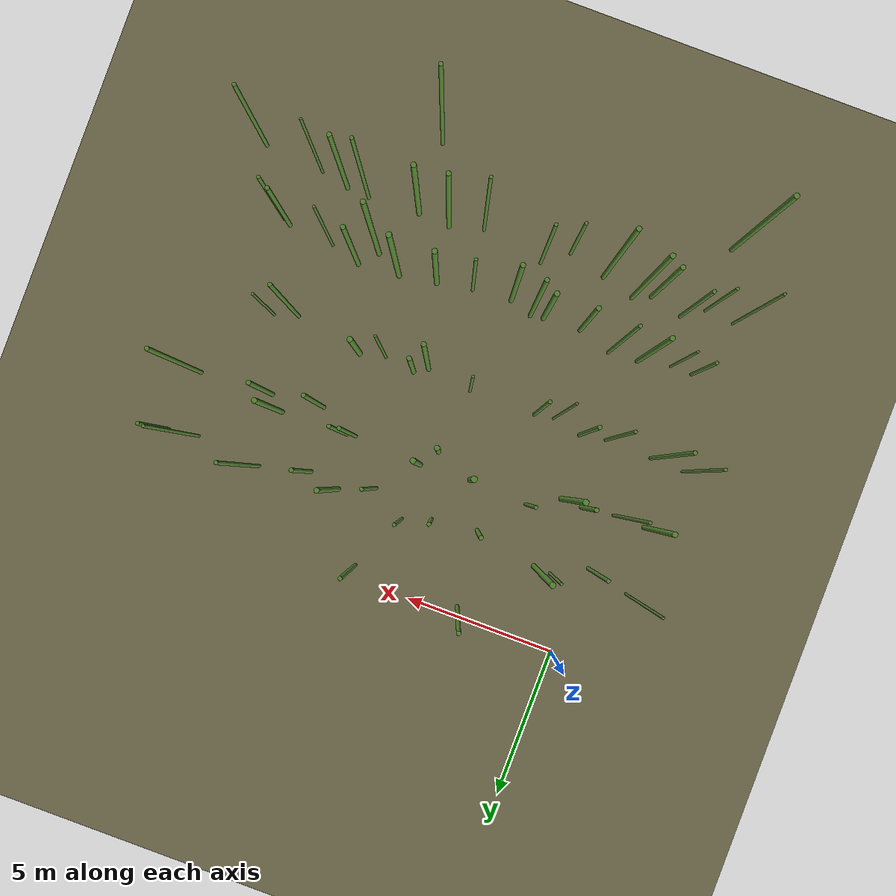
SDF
<sdf version="1.9">
 <world name="bamboo_field">
  <model name="ground_plane">
   <static>true</static>
   <link name="link">
    <collision name="collision">
     <geometry><plane><normal>0 0 1</normal><size>80.0 80.0</size></plane></geometry>
    </collision>
    <visual name="visual">
     <geometry><plane><normal>0 0 1</normal><size>80.0 80.0</size></plane></geometry>
     <material><diffuse>0.45 0.42 0.30 1</diffuse></material>
    </visual>
   </link>
  </model>
  <model name="bamboo_638">
   <static>true</static>
   <pose>-0.9946874145618714 -14.499350001815412 3.9134186991705504 0 0 0</pose>
   <link name="link">
    <collision name="collision">
     <geometry>
      <cylinder><radius>0.08014711212861786</radius><length>7.826837398341101</length></cylinder>
     </geometry>
    </collision>
    <visual name="visual">
     <geometry>
      <cylinder><radius>0.08014711212861786</radius><length>7.826837398341101</length></cylinder>
     </geometry>
     <material><diffuse>0.35 0.55 0.20 1</diffuse><specular>0.1 0.1 0.1 1</specular></material>
    </visual>
   </link>
  </model>
  <model name="bamboo_647">
   <static>true</static>
   <pose>9.150279488582385 -14.460414961602686 3.9707226586488966 0 0 0</pose>
   <link name="link">
    <collision name="collision">
     <geometry>
      <cylinder><radius>0.0646170188852106</radius><length>7.941445317297793</length></cylinder>
     </geometry>
    </collision>
    <visual name="visual">
     <geometry>
      <cylinder><radius>0.0646170188852106</radius><length>7.941445317297793</length></cylinder>
     </geometry>
     <material><diffuse>0.35 0.55 0.20 1</diffuse><specular>0.1 0.1 0.1 1</specular></material>
    </visual>
   </link>
  </model>
  <model name="bamboo_704">
   <static>true</static>
   <pose>-1.8685894989383836 -12.221886072193785 3.277248599776084 0 0 0</pose>
   <link name="link">
    <collision name="collision">
     <geometry>
      <cylinder><radius>0.04527570909495779</radius><length>6.554497199552168</length></cylinder>
     </geometry>
    </collision>
    <visual name="visual">
     <geometry>
      <cylinder><radius>0.04527570909495779</radius><length>6.554497199552168</length></cylinder>
     </geometry>
     <material><diffuse>0.35 0.55 0.20 1</diffuse><specular>0.1 0.1 0.1 1</specular></material>
    </visual>
   </link>
  </model>
  <model name="bamboo_705">
   <static>true</static>
   <pose>-0.8719768916085221 -12.306731477500549 2.360793077200136 0 0 0</pose>
   <link name="link">
    <collision name="collision">
     <geometry>
      <cylinder><radius>0.04834046594517737</radius><length>4.721586154400272</length></cylinder>
     </geometry>
    </collision>
    <visual name="visual">
     <geometry>
      <cylinder><radius>0.04834046594517737</radius><length>4.721586154400272</length></cylinder>
     </geometry>
     <material><diffuse>0.35 0.55 0.20 1</diffuse><specular>0.1 0.1 0.1 1</specular></material>
    </visual>
   </link>
  </model>
  <model name="bamboo_706">
   <static>true</static>
   <pose>-0.16918783347953809 -11.848966393460959 2.704648150540664 0 0 0</pose>
   <link name="link">
    <collision name="collision">
     <geometry>
      <cylinder><radius>0.06215060849991439</radius><length>5.409296301081328</length></cylinder>
     </geometry>
    </collision>
    <visual name="visual">
     <geometry>
      <cylinder><radius>0.06215060849991439</radius><length>5.409296301081328</length></cylinder>
     </geometry>
     <material><diffuse>0.35 0.55 0.20 1</diffuse><specular>0.1 0.1 0.1 1</specular></material>
    </visual>
   </link>
  </model>
  <model name="bamboo_707">
   <static>true</static>
   <pose>0.9481726911994396 -12.11710112771372 2.861176145466491 0 0 0</pose>
   <link name="link">
    <collision name="collision">
     <geometry>
      <cylinder><radius>0.07820921839521855</radius><length>5.722352290932982</length></cylinder>
     </geometry>
    </collision>
    <visual name="visual">
     <geometry>
      <cylinder><radius>0.07820921839521855</radius><length>5.722352290932982</length></cylinder>
     </geometry>
     <material><diffuse>0.35 0.55 0.20 1</diffuse><specular>0.1 0.1 0.1 1</specular></material>
    </visual>
   </link>
  </model>
  <model name="bamboo_708">
   <static>true</static>
   <pose>1.5431855828186514 -11.869834243951713 3.852293845185315 0 0 0</pose>
   <link name="link">
    <collision name="collision">
     <geometry>
      <cylinder><radius>0.07828541098171424</radius><length>7.70458769037063</length></cylinder>
     </geometry>
    </collision>
    <visual name="visual">
     <geometry>
      <cylinder><radius>0.07828541098171424</radius><length>7.70458769037063</length></cylinder>
     </geometry>
     <material><diffuse>0.35 0.55 0.20 1</diffuse><specular>0.1 0.1 0.1 1</specular></material>
    </visual>
   </link>
  </model>
  <model name="bamboo_709">
   <static>true</static>
   <pose>2.6613570880264845 -12.180663935705416 3.965912942357096 0 0 0</pose>
   <link name="link">
    <collision name="collision">
     <geometry>
      <cylinder><radius>0.07631566391686458</radius><length>7.931825884714192</length></cylinder>
     </geometry>
    </collision>
    <visual name="visual">
     <geometry>
      <cylinder><radius>0.07631566391686458</radius><length>7.931825884714192</length></cylinder>
     </geometry>
     <material><diffuse>0.35 0.55 0.20 1</diffuse><specular>0.1 0.1 0.1 1</specular></material>
    </visual>
   </link>
  </model>
  <model name="bamboo_710">
   <static>true</static>
   <pose>3.9406922110673945 -12.527799526873327 2.44377340696488 0 0 0</pose>
   <link name="link">
    <collision name="collision">
     <geometry>
      <cylinder><radius>0.05501669808640868</radius><length>4.88754681392976</length></cylinder>
     </geometry>
    </collision>
    <visual name="visual">
     <geometry>
      <cylinder><radius>0.05501669808640868</radius><length>4.88754681392976</length></cylinder>
     </geometry>
     <material><diffuse>0.35 0.55 0.20 1</diffuse><specular>0.1 0.1 0.1 1</specular></material>
    </visual>
   </link>
  </model>
  <model name="bamboo_711">
   <static>true</static>
   <pose>4.759890042045234 -11.894844771745435 3.1073263065706413 0 0 0</pose>
   <link name="link">
    <collision name="collision">
     <geometry>
      <cylinder><radius>0.05379785683718028</radius><length>6.214652613141283</length></cylinder>
     </geometry>
    </collision>
    <visual name="visual">
     <geometry>
      <cylinder><radius>0.05379785683718028</radius><length>6.214652613141283</length></cylinder>
     </geometry>
     <material><diffuse>0.35 0.55 0.20 1</diffuse><specular>0.1 0.1 0.1 1</specular></material>
    </visual>
   </link>
  </model>
  <model name="bamboo_712">
   <static>true</static>
   <pose>6.885778840102381 -12.263131712959213 3.622148473565317 0 0 0</pose>
   <link name="link">
    <collision name="collision">
     <geometry>
      <cylinder><radius>0.051649707427711716</radius><length>7.244296947130634</length></cylinder>
     </geometry>
    </collision>
    <visual name="visual">
     <geometry>
      <cylinder><radius>0.051649707427711716</radius><length>7.244296947130634</length></cylinder>
     </geometry>
     <material><diffuse>0.35 0.55 0.20 1</diffuse><specular>0.1 0.1 0.1 1</specular></material>
    </visual>
   </link>
  </model>
  <model name="bamboo_713">
   <static>true</static>
   <pose>8.009629720139834 -11.964996815824227 3.5858083886285597 0 0 0</pose>
   <link name="link">
    <collision name="collision">
     <geometry>
      <cylinder><radius>0.07617902633722576</radius><length>7.171616777257119</length></cylinder>
     </geometry>
    </collision>
    <visual name="visual">
     <geometry>
      <cylinder><radius>0.07617902633722576</radius><length>7.171616777257119</length></cylinder>
     </geometry>
     <material><diffuse>0.35 0.55 0.20 1</diffuse><specular>0.1 0.1 0.1 1</specular></material>
    </visual>
   </link>
  </model>
  <model name="bamboo_714">
   <static>true</static>
   <pose>9.07471129465066 -12.031437933524254 3.19046240511916 0 0 0</pose>
   <link name="link">
    <collision name="collision">
     <geometry>
      <cylinder><radius>0.08538278210735471</radius><length>6.38092481023832</length></cylinder>
     </geometry>
    </collision>
    <visual name="visual">
     <geometry>
      <cylinder><radius>0.08538278210735471</radius><length>6.38092481023832</length></cylinder>
     </geometry>
     <material><diffuse>0.35 0.55 0.20 1</diffuse><specular>0.1 0.1 0.1 1</specular></material>
    </visual>
   </link>
  </model>
  <model name="bamboo_715">
   <static>true</static>
   <pose>10.808883777784775 -11.935508719027792 3.6342834000930844 0 0 0</pose>
   <link name="link">
    <collision name="collision">
     <geometry>
      <cylinder><radius>0.05739651034764666</radius><length>7.268566800186169</length></cylinder>
     </geometry>
    </collision>
    <visual name="visual">
     <geometry>
      <cylinder><radius>0.05739651034764666</radius><length>7.268566800186169</length></cylinder>
     </geometry>
     <material><diffuse>0.35 0.55 0.20 1</diffuse><specular>0.1 0.1 0.1 1</specular></material>
    </visual>
   </link>
  </model>
  <model name="bamboo_716">
   <static>true</static>
   <pose>11.573237251274541 -11.998797454192815 3.204603268633085 0 0 0</pose>
   <link name="link">
    <collision name="collision">
     <geometry>
      <cylinder><radius>0.07263895915801755</radius><length>6.40920653726617</length></cylinder>
     </geometry>
    </collision>
    <visual name="visual">
     <geometry>
      <cylinder><radius>0.07263895915801755</radius><length>6.40920653726617</length></cylinder>
     </geometry>
     <material><diffuse>0.35 0.55 0.20 1</diffuse><specular>0.1 0.1 0.1 1</specular></material>
    </visual>
   </link>
  </model>
  <model name="bamboo_717">
   <static>true</static>
   <pose>12.522933982891937 -12.191309359580584 3.0798594588773383 0 0 0</pose>
   <link name="link">
    <collision name="collision">
     <geometry>
      <cylinder><radius>0.04205911260817816</radius><length>6.1597189177546765</length></cylinder>
     </geometry>
    </collision>
    <visual name="visual">
     <geometry>
      <cylinder><radius>0.04205911260817816</radius><length>6.1597189177546765</length></cylinder>
     </geometry>
     <material><diffuse>0.35 0.55 0.20 1</diffuse><specular>0.1 0.1 0.1 1</specular></material>
    </visual>
   </link>
  </model>
  <model name="bamboo_718">
   <static>true</static>
   <pose>14.55248881110734 -12.387530547187657 3.190264382589681 0 0 0</pose>
   <link name="link">
    <collision name="collision">
     <geometry>
      <cylinder><radius>0.06228081179888553</radius><length>6.380528765179362</length></cylinder>
     </geometry>
    </collision>
    <visual name="visual">
     <geometry>
      <cylinder><radius>0.06228081179888553</radius><length>6.380528765179362</length></cylinder>
     </geometry>
     <material><diffuse>0.35 0.55 0.20 1</diffuse><specular>0.1 0.1 0.1 1</specular></material>
    </visual>
   </link>
  </model>
  <model name="bamboo_777">
   <static>true</static>
   <pose>-1.1798505966455008 -10.17783732275529 2.012262524870586 0 0 0</pose>
   <link name="link">
    <collision name="collision">
     <geometry>
      <cylinder><radius>0.05619619196915351</radius><length>4.024525049741172</length></cylinder>
     </geometry>
    </collision>
    <visual name="visual">
     <geometry>
      <cylinder><radius>0.05619619196915351</radius><length>4.024525049741172</length></cylinder>
     </geometry>
     <material><diffuse>0.35 0.55 0.20 1</diffuse><specular>0.1 0.1 0.1 1</specular></material>
    </visual>
   </link>
  </model>
  <model name="bamboo_778">
   <static>true</static>
   <pose>-0.43881660910885945 -10.18023463372481 2.351258176475995 0 0 0</pose>
   <link name="link">
    <collision name="collision">
     <geometry>
      <cylinder><radius>0.041455869090573035</radius><length>4.70251635295199</length></cylinder>
     </geometry>
    </collision>
    <visual name="visual">
     <geometry>
      <cylinder><radius>0.041455869090573035</radius><length>4.70251635295199</length></cylinder>
     </geometry>
     <material><diffuse>0.35 0.55 0.20 1</diffuse><specular>0.1 0.1 0.1 1</specular></material>
    </visual>
   </link>
  </model>
  <model name="bamboo_779">
   <static>true</static>
   <pose>0.6358590575566945 -9.977750091020908 3.2913044413291495 0 0 0</pose>
   <link name="link">
    <collision name="collision">
     <geometry>
      <cylinder><radius>0.07986271919144625</radius><length>6.582608882658299</length></cylinder>
     </geometry>
    </collision>
    <visual name="visual">
     <geometry>
      <cylinder><radius>0.07986271919144625</radius><length>6.582608882658299</length></cylinder>
     </geometry>
     <material><diffuse>0.35 0.55 0.20 1</diffuse><specular>0.1 0.1 0.1 1</specular></material>
    </visual>
   </link>
  </model>
  <model name="bamboo_780">
   <static>true</static>
   <pose>1.6454026678223395 -9.896981180100415 3.5679780664170773 0 0 0</pose>
   <link name="link">
    <collision name="collision">
     <geometry>
      <cylinder><radius>0.05675548272671926</radius><length>7.1359561328341545</length></cylinder>
     </geometry>
    </collision>
    <visual name="visual">
     <geometry>
      <cylinder><radius>0.05675548272671926</radius><length>7.1359561328341545</length></cylinder>
     </geometry>
     <material><diffuse>0.35 0.55 0.20 1</diffuse><specular>0.1 0.1 0.1 1</specular></material>
    </visual>
   </link>
  </model>
  <model name="bamboo_781">
   <static>true</static>
   <pose>2.764797649475428 -10.271006703278971 2.6310056828733863 0 0 0</pose>
   <link name="link">
    <collision name="collision">
     <geometry>
      <cylinder><radius>0.07624820771746249</radius><length>5.262011365746773</length></cylinder>
     </geometry>
    </collision>
    <visual name="visual">
     <geometry>
      <cylinder><radius>0.07624820771746249</radius><length>5.262011365746773</length></cylinder>
     </geometry>
     <material><diffuse>0.35 0.55 0.20 1</diffuse><specular>0.1 0.1 0.1 1</specular></material>
    </visual>
   </link>
  </model>
  <model name="bamboo_782">
   <static>true</static>
   <pose>4.042604441318144 -10.220468412358573 2.707191080841616 0 0 0</pose>
   <link name="link">
    <collision name="collision">
     <geometry>
      <cylinder><radius>0.08440147347591176</radius><length>5.414382161683232</length></cylinder>
     </geometry>
    </collision>
    <visual name="visual">
     <geometry>
      <cylinder><radius>0.08440147347591176</radius><length>5.414382161683232</length></cylinder>
     </geometry>
     <material><diffuse>0.35 0.55 0.20 1</diffuse><specular>0.1 0.1 0.1 1</specular></material>
    </visual>
   </link>
  </model>
  <model name="bamboo_783">
   <static>true</static>
   <pose>4.476031551298204 -10.144094040691009 3.6848115498717053 0 0 0</pose>
   <link name="link">
    <collision name="collision">
     <geometry>
      <cylinder><radius>0.07132554238076252</radius><length>7.369623099743411</length></cylinder>
     </geometry>
    </collision>
    <visual name="visual">
     <geometry>
      <cylinder><radius>0.07132554238076252</radius><length>7.369623099743411</length></cylinder>
     </geometry>
     <material><diffuse>0.35 0.55 0.20 1</diffuse><specular>0.1 0.1 0.1 1</specular></material>
    </visual>
   </link>
  </model>
  <model name="bamboo_784">
   <static>true</static>
   <pose>5.234570728176862 -10.394650681324332 3.410532368091039 0 0 0</pose>
   <link name="link">
    <collision name="collision">
     <geometry>
      <cylinder><radius>0.07757701043348067</radius><length>6.821064736182078</length></cylinder>
     </geometry>
    </collision>
    <visual name="visual">
     <geometry>
      <cylinder><radius>0.07757701043348067</radius><length>6.821064736182078</length></cylinder>
     </geometry>
     <material><diffuse>0.35 0.55 0.20 1</diffuse><specular>0.1 0.1 0.1 1</specular></material>
    </visual>
   </link>
  </model>
  <model name="bamboo_785">
   <static>true</static>
   <pose>6.545477701283061 -10.26549251693101 2.903812659225724 0 0 0</pose>
   <link name="link">
    <collision name="collision">
     <geometry>
      <cylinder><radius>0.051882112313651876</radius><length>5.807625318451448</length></cylinder>
     </geometry>
    </collision>
    <visual name="visual">
     <geometry>
      <cylinder><radius>0.051882112313651876</radius><length>5.807625318451448</length></cylinder>
     </geometry>
     <material><diffuse>0.35 0.55 0.20 1</diffuse><specular>0.1 0.1 0.1 1</specular></material>
    </visual>
   </link>
  </model>
  <model name="bamboo_786">
   <static>true</static>
   <pose>7.732328231433898 -10.078926198613518 2.88754818597428 0 0 0</pose>
   <link name="link">
    <collision name="collision">
     <geometry>
      <cylinder><radius>0.08566769230835293</radius><length>5.77509637194856</length></cylinder>
     </geometry>
    </collision>
    <visual name="visual">
     <geometry>
      <cylinder><radius>0.08566769230835293</radius><length>5.77509637194856</length></cylinder>
     </geometry>
     <material><diffuse>0.35 0.55 0.20 1</diffuse><specular>0.1 0.1 0.1 1</specular></material>
    </visual>
   </link>
  </model>
  <model name="bamboo_787">
   <static>true</static>
   <pose>8.981435185617809 -9.873917185976472 3.464882133511887 0 0 0</pose>
   <link name="link">
    <collision name="collision">
     <geometry>
      <cylinder><radius>0.08618183839450476</radius><length>6.929764267023774</length></cylinder>
     </geometry>
    </collision>
    <visual name="visual">
     <geometry>
      <cylinder><radius>0.08618183839450476</radius><length>6.929764267023774</length></cylinder>
     </geometry>
     <material><diffuse>0.35 0.55 0.20 1</diffuse><specular>0.1 0.1 0.1 1</specular></material>
    </visual>
   </link>
  </model>
  <model name="bamboo_788">
   <static>true</static>
   <pose>9.845915733861373 -10.323888422902085 3.876047693433562 0 0 0</pose>
   <link name="link">
    <collision name="collision">
     <geometry>
      <cylinder><radius>0.08110692589814716</radius><length>7.752095386867124</length></cylinder>
     </geometry>
    </collision>
    <visual name="visual">
     <geometry>
      <cylinder><radius>0.08110692589814716</radius><length>7.752095386867124</length></cylinder>
     </geometry>
     <material><diffuse>0.35 0.55 0.20 1</diffuse><specular>0.1 0.1 0.1 1</specular></material>
    </visual>
   </link>
  </model>
  <model name="bamboo_789">
   <static>true</static>
   <pose>10.364918793110029 -9.764154291601711 3.0446897464370126 0 0 0</pose>
   <link name="link">
    <collision name="collision">
     <geometry>
      <cylinder><radius>0.07568386952013156</radius><length>6.089379492874025</length></cylinder>
     </geometry>
    </collision>
    <visual name="visual">
     <geometry>
      <cylinder><radius>0.07568386952013156</radius><length>6.089379492874025</length></cylinder>
     </geometry>
     <material><diffuse>0.35 0.55 0.20 1</diffuse><specular>0.1 0.1 0.1 1</specular></material>
    </visual>
   </link>
  </model>
  <model name="bamboo_790">
   <static>true</static>
   <pose>11.369160655956453 -10.052386033942744 2.933751804965524 0 0 0</pose>
   <link name="link">
    <collision name="collision">
     <geometry>
      <cylinder><radius>0.04435379457968836</radius><length>5.867503609931048</length></cylinder>
     </geometry>
    </collision>
    <visual name="visual">
     <geometry>
      <cylinder><radius>0.04435379457968836</radius><length>5.867503609931048</length></cylinder>
     </geometry>
     <material><diffuse>0.35 0.55 0.20 1</diffuse><specular>0.1 0.1 0.1 1</specular></material>
    </visual>
   </link>
  </model>
  <model name="bamboo_791">
   <static>true</static>
   <pose>12.924951440709878 -10.192174173523956 2.624285796863598 0 0 0</pose>
   <link name="link">
    <collision name="collision">
     <geometry>
      <cylinder><radius>0.06887799172047294</radius><length>5.248571593727196</length></cylinder>
     </geometry>
    </collision>
    <visual name="visual">
     <geometry>
      <cylinder><radius>0.06887799172047294</radius><length>5.248571593727196</length></cylinder>
     </geometry>
     <material><diffuse>0.35 0.55 0.20 1</diffuse><specular>0.1 0.1 0.1 1</specular></material>
    </visual>
   </link>
  </model>
  <model name="bamboo_792">
   <static>true</static>
   <pose>13.159830374576147 -10.312265926456487 2.882231245504678 0 0 0</pose>
   <link name="link">
    <collision name="collision">
     <geometry>
      <cylinder><radius>0.05595748952507492</radius><length>5.764462491009356</length></cylinder>
     </geometry>
    </collision>
    <visual name="visual">
     <geometry>
      <cylinder><radius>0.05595748952507492</radius><length>5.764462491009356</length></cylinder>
     </geometry>
     <material><diffuse>0.35 0.55 0.20 1</diffuse><specular>0.1 0.1 0.1 1</specular></material>
    </visual>
   </link>
  </model>
  <model name="bamboo_848">
   <static>true</static>
   <pose>-2.0183040743552336 -7.073972254267283 3.2866763339377894 0 0 0</pose>
   <link name="link">
    <collision name="collision">
     <geometry>
      <cylinder><radius>0.0509193249098831</radius><length>6.573352667875579</length></cylinder>
     </geometry>
    </collision>
    <visual name="visual">
     <geometry>
      <cylinder><radius>0.0509193249098831</radius><length>6.573352667875579</length></cylinder>
     </geometry>
     <material><diffuse>0.35 0.55 0.20 1</diffuse><specular>0.1 0.1 0.1 1</specular></material>
    </visual>
   </link>
  </model>
  <model name="bamboo_849">
   <static>true</static>
   <pose>-0.883079867215764 -7.126517788197719 3.7930247857824173 0 0 0</pose>
   <link name="link">
    <collision name="collision">
     <geometry>
      <cylinder><radius>0.062294102616147984</radius><length>7.586049571564835</length></cylinder>
     </geometry>
    </collision>
    <visual name="visual">
     <geometry>
      <cylinder><radius>0.062294102616147984</radius><length>7.586049571564835</length></cylinder>
     </geometry>
     <material><diffuse>0.35 0.55 0.20 1</diffuse><specular>0.1 0.1 0.1 1</specular></material>
    </visual>
   </link>
  </model>
  <model name="bamboo_850">
   <static>true</static>
   <pose>0.7191119098053741 -7.172504300486279 3.4001103986774512 0 0 0</pose>
   <link name="link">
    <collision name="collision">
     <geometry>
      <cylinder><radius>0.05332182405576388</radius><length>6.8002207973549025</length></cylinder>
     </geometry>
    </collision>
    <visual name="visual">
     <geometry>
      <cylinder><radius>0.05332182405576388</radius><length>6.8002207973549025</length></cylinder>
     </geometry>
     <material><diffuse>0.35 0.55 0.20 1</diffuse><specular>0.1 0.1 0.1 1</specular></material>
    </visual>
   </link>
  </model>
  <model name="bamboo_851">
   <static>true</static>
   <pose>1.5828672381517772 -7.028096550818514 2.872115334926735 0 0 0</pose>
   <link name="link">
    <collision name="collision">
     <geometry>
      <cylinder><radius>0.06453397269477673</radius><length>5.74423066985347</length></cylinder>
     </geometry>
    </collision>
    <visual name="visual">
     <geometry>
      <cylinder><radius>0.06453397269477673</radius><length>5.74423066985347</length></cylinder>
     </geometry>
     <material><diffuse>0.35 0.55 0.20 1</diffuse><specular>0.1 0.1 0.1 1</specular></material>
    </visual>
   </link>
  </model>
  <model name="bamboo_852">
   <static>true</static>
   <pose>2.5787691741798078 -7.2373060375396 3.908310691852291 0 0 0</pose>
   <link name="link">
    <collision name="collision">
     <geometry>
      <cylinder><radius>0.04016536801473195</radius><length>7.816621383704582</length></cylinder>
     </geometry>
    </collision>
    <visual name="visual">
     <geometry>
      <cylinder><radius>0.04016536801473195</radius><length>7.816621383704582</length></cylinder>
     </geometry>
     <material><diffuse>0.35 0.55 0.20 1</diffuse><specular>0.1 0.1 0.1 1</specular></material>
    </visual>
   </link>
  </model>
  <model name="bamboo_853">
   <static>true</static>
   <pose>3.213513425750487 -7.1321617080731645 3.3636714712206732 0 0 0</pose>
   <link name="link">
    <collision name="collision">
     <geometry>
      <cylinder><radius>0.057945916329860576</radius><length>6.7273429424413465</length></cylinder>
     </geometry>
    </collision>
    <visual name="visual">
     <geometry>
      <cylinder><radius>0.057945916329860576</radius><length>6.7273429424413465</length></cylinder>
     </geometry>
     <material><diffuse>0.35 0.55 0.20 1</diffuse><specular>0.1 0.1 0.1 1</specular></material>
    </visual>
   </link>
  </model>
  <model name="bamboo_854">
   <static>true</static>
   <pose>5.467018802957449 -7.121297676428453 2.919278707511024 0 0 0</pose>
   <link name="link">
    <collision name="collision">
     <geometry>
      <cylinder><radius>0.0440228392337194</radius><length>5.838557415022048</length></cylinder>
     </geometry>
    </collision>
    <visual name="visual">
     <geometry>
      <cylinder><radius>0.0440228392337194</radius><length>5.838557415022048</length></cylinder>
     </geometry>
     <material><diffuse>0.35 0.55 0.20 1</diffuse><specular>0.1 0.1 0.1 1</specular></material>
    </visual>
   </link>
  </model>
  <model name="bamboo_855">
   <static>true</static>
   <pose>6.9962078722680445 -7.323269691642657 3.7929213957006933 0 0 0</pose>
   <link name="link">
    <collision name="collision">
     <geometry>
      <cylinder><radius>0.07479411393035379</radius><length>7.585842791401387</length></cylinder>
     </geometry>
    </collision>
    <visual name="visual">
     <geometry>
      <cylinder><radius>0.07479411393035379</radius><length>7.585842791401387</length></cylinder>
     </geometry>
     <material><diffuse>0.35 0.55 0.20 1</diffuse><specular>0.1 0.1 0.1 1</specular></material>
    </visual>
   </link>
  </model>
  <model name="bamboo_856">
   <static>true</static>
   <pose>7.4238858291594845 -7.070935152371391 2.2798859035327776 0 0 0</pose>
   <link name="link">
    <collision name="collision">
     <geometry>
      <cylinder><radius>0.07676620915139634</radius><length>4.559771807065555</length></cylinder>
     </geometry>
    </collision>
    <visual name="visual">
     <geometry>
      <cylinder><radius>0.07676620915139634</radius><length>4.559771807065555</length></cylinder>
     </geometry>
     <material><diffuse>0.35 0.55 0.20 1</diffuse><specular>0.1 0.1 0.1 1</specular></material>
    </visual>
   </link>
  </model>
  <model name="bamboo_857">
   <static>true</static>
   <pose>8.441310713057218 -7.2009944439576765 3.0811040944368786 0 0 0</pose>
   <link name="link">
    <collision name="collision">
     <geometry>
      <cylinder><radius>0.04314963154224275</radius><length>6.162208188873757</length></cylinder>
     </geometry>
    </collision>
    <visual name="visual">
     <geometry>
      <cylinder><radius>0.04314963154224275</radius><length>6.162208188873757</length></cylinder>
     </geometry>
     <material><diffuse>0.35 0.55 0.20 1</diffuse><specular>0.1 0.1 0.1 1</specular></material>
    </visual>
   </link>
  </model>
  <model name="bamboo_858">
   <static>true</static>
   <pose>9.298837331383938 -7.023307504351303 2.0740853598607347 0 0 0</pose>
   <link name="link">
    <collision name="collision">
     <geometry>
      <cylinder><radius>0.08979168140009726</radius><length>4.1481707197214694</length></cylinder>
     </geometry>
    </collision>
    <visual name="visual">
     <geometry>
      <cylinder><radius>0.08979168140009726</radius><length>4.1481707197214694</length></cylinder>
     </geometry>
     <material><diffuse>0.35 0.55 0.20 1</diffuse><specular>0.1 0.1 0.1 1</specular></material>
    </visual>
   </link>
  </model>
  <model name="bamboo_859">
   <static>true</static>
   <pose>11.611545285007868 -7.470484935979205 3.3561556468933826 0 0 0</pose>
   <link name="link">
    <collision name="collision">
     <geometry>
      <cylinder><radius>0.06291851823780305</radius><length>6.712311293786765</length></cylinder>
     </geometry>
    </collision>
    <visual name="visual">
     <geometry>
      <cylinder><radius>0.06291851823780305</radius><length>6.712311293786765</length></cylinder>
     </geometry>
     <material><diffuse>0.35 0.55 0.20 1</diffuse><specular>0.1 0.1 0.1 1</specular></material>
    </visual>
   </link>
  </model>
  <model name="bamboo_860">
   <static>true</static>
   <pose>12.388986863596841 -7.244898731627056 2.283180944456081 0 0 0</pose>
   <link name="link">
    <collision name="collision">
     <geometry>
      <cylinder><radius>0.04184388337115188</radius><length>4.566361888912162</length></cylinder>
     </geometry>
    </collision>
    <visual name="visual">
     <geometry>
      <cylinder><radius>0.04184388337115188</radius><length>4.566361888912162</length></cylinder>
     </geometry>
     <material><diffuse>0.35 0.55 0.20 1</diffuse><specular>0.1 0.1 0.1 1</specular></material>
    </visual>
   </link>
  </model>
  <model name="bamboo_912">
   <static>true</static>
   <pose>-1.4714579999415425 -4.91417997996601 2.8919453823178047 0 0 0</pose>
   <link name="link">
    <collision name="collision">
     <geometry>
      <cylinder><radius>0.08204384581013202</radius><length>5.7838907646356095</length></cylinder>
     </geometry>
    </collision>
    <visual name="visual">
     <geometry>
      <cylinder><radius>0.08204384581013202</radius><length>5.7838907646356095</length></cylinder>
     </geometry>
     <material><diffuse>0.35 0.55 0.20 1</diffuse><specular>0.1 0.1 0.1 1</specular></material>
    </visual>
   </link>
  </model>
  <model name="bamboo_913">
   <static>true</static>
   <pose>-0.38512071231732986 -4.936919472823416 3.871330153451787 0 0 0</pose>
   <link name="link">
    <collision name="collision">
     <geometry>
      <cylinder><radius>0.05110719285208112</radius><length>7.742660306903574</length></cylinder>
     </geometry>
    </collision>
    <visual name="visual">
     <geometry>
      <cylinder><radius>0.05110719285208112</radius><length>7.742660306903574</length></cylinder>
     </geometry>
     <material><diffuse>0.35 0.55 0.20 1</diffuse><specular>0.1 0.1 0.1 1</specular></material>
    </visual>
   </link>
  </model>
  <model name="bamboo_914">
   <static>true</static>
   <pose>0.693946452184785 -4.8165884977318605 2.1747538741803094 0 0 0</pose>
   <link name="link">
    <collision name="collision">
     <geometry>
      <cylinder><radius>0.07357788881570984</radius><length>4.349507748360619</length></cylinder>
     </geometry>
    </collision>
    <visual name="visual">
     <geometry>
      <cylinder><radius>0.07357788881570984</radius><length>4.349507748360619</length></cylinder>
     </geometry>
     <material><diffuse>0.35 0.55 0.20 1</diffuse><specular>0.1 0.1 0.1 1</specular></material>
    </visual>
   </link>
  </model>
  <model name="bamboo_915">
   <static>true</static>
   <pose>1.4155437201959291 -4.849141368408908 3.816893900435662 0 0 0</pose>
   <link name="link">
    <collision name="collision">
     <geometry>
      <cylinder><radius>0.08717010820509777</radius><length>7.633787800871324</length></cylinder>
     </geometry>
    </collision>
    <visual name="visual">
     <geometry>
      <cylinder><radius>0.08717010820509777</radius><length>7.633787800871324</length></cylinder>
     </geometry>
     <material><diffuse>0.35 0.55 0.20 1</diffuse><specular>0.1 0.1 0.1 1</specular></material>
    </visual>
   </link>
  </model>
  <model name="bamboo_916">
   <static>true</static>
   <pose>2.4502684631779093 -4.268436985521958 2.5693007311958107 0 0 0</pose>
   <link name="link">
    <collision name="collision">
     <geometry>
      <cylinder><radius>0.05864155754901126</radius><length>5.138601462391621</length></cylinder>
     </geometry>
    </collision>
    <visual name="visual">
     <geometry>
      <cylinder><radius>0.05864155754901126</radius><length>5.138601462391621</length></cylinder>
     </geometry>
     <material><diffuse>0.35 0.55 0.20 1</diffuse><specular>0.1 0.1 0.1 1</specular></material>
    </visual>
   </link>
  </model>
  <model name="bamboo_917">
   <static>true</static>
   <pose>4.447225789698357 -4.3887325757013915 3.607371009029513 0 0 0</pose>
   <link name="link">
    <collision name="collision">
     <geometry>
      <cylinder><radius>0.08962985829100376</radius><length>7.214742018059026</length></cylinder>
     </geometry>
    </collision>
    <visual name="visual">
     <geometry>
      <cylinder><radius>0.08962985829100376</radius><length>7.214742018059026</length></cylinder>
     </geometry>
     <material><diffuse>0.35 0.55 0.20 1</diffuse><specular>0.1 0.1 0.1 1</specular></material>
    </visual>
   </link>
  </model>
  <model name="bamboo_918">
   <static>true</static>
   <pose>5.744352293456424 -4.89244894325198 2.2791353737639115 0 0 0</pose>
   <link name="link">
    <collision name="collision">
     <geometry>
      <cylinder><radius>0.08482144132785267</radius><length>4.558270747527823</length></cylinder>
     </geometry>
    </collision>
    <visual name="visual">
     <geometry>
      <cylinder><radius>0.08482144132785267</radius><length>4.558270747527823</length></cylinder>
     </geometry>
     <material><diffuse>0.35 0.55 0.20 1</diffuse><specular>0.1 0.1 0.1 1</specular></material>
    </visual>
   </link>
  </model>
  <model name="bamboo_919">
   <static>true</static>
   <pose>6.162720809245519 -4.280636816519156 3.973276694646727 0 0 0</pose>
   <link name="link">
    <collision name="collision">
     <geometry>
      <cylinder><radius>0.08337629099387714</radius><length>7.946553389293454</length></cylinder>
     </geometry>
    </collision>
    <visual name="visual">
     <geometry>
      <cylinder><radius>0.08337629099387714</radius><length>7.946553389293454</length></cylinder>
     </geometry>
     <material><diffuse>0.35 0.55 0.20 1</diffuse><specular>0.1 0.1 0.1 1</specular></material>
    </visual>
   </link>
  </model>
  <model name="bamboo_920">
   <static>true</static>
   <pose>8.479842544089413 -4.42403290181919 3.1116276899296036 0 0 0</pose>
   <link name="link">
    <collision name="collision">
     <geometry>
      <cylinder><radius>0.06072570069689043</radius><length>6.223255379859207</length></cylinder>
     </geometry>
    </collision>
    <visual name="visual">
     <geometry>
      <cylinder><radius>0.06072570069689043</radius><length>6.223255379859207</length></cylinder>
     </geometry>
     <material><diffuse>0.35 0.55 0.20 1</diffuse><specular>0.1 0.1 0.1 1</specular></material>
    </visual>
   </link>
  </model>
  <model name="bamboo_921">
   <static>true</static>
   <pose>8.767003495421573 -4.374329711559669 3.10773385302105 0 0 0</pose>
   <link name="link">
    <collision name="collision">
     <geometry><cylinder><radius>0.05908847663159041</radius><length>6.2154677060421</length></cylinder></geometry>
    </collision>
    <visual name="visual">
     <geometry><cylinder><radius>0.05908847663159041</radius><length>6.2154677060421</length></cylinder></geometry>
     <material><diffuse>0.35 0.55 0.20 1</diffuse><specular>0.1 0.1 0.1 1</specular></material>
    </visual>
   </link>
  </model>
  <model name="bamboo_922">
   <static>true</static>
   <pose>9.790062546249624 -4.950990852803085 2.926903668411377 0 0 0</pose>
   <link name="link">
    <collision name="collision">
     <geometry>
      <cylinder><radius>0.06796405283356309</radius><length>5.853807336822754</length></cylinder>
     </geometry>
    </collision>
    <visual name="visual">
     <geometry>
      <cylinder><radius>0.06796405283356309</radius><length>5.853807336822754</length></cylinder>
     </geometry>
     <material><diffuse>0.35 0.55 0.20 1</diffuse><specular>0.1 0.1 0.1 1</specular></material>
    </visual>
   </link>
  </model>
  <model name="bamboo_923">
   <static>true</static>
   <pose>11.034014425932414 -4.327822957325331 2.94508233851458 0 0 0</pose>
   <link name="link">
    <collision name="collision">
     <geometry>
      <cylinder><radius>0.08171215356758267</radius><length>5.89016467702916</length></cylinder>
     </geometry>
    </collision>
    <visual name="visual">
     <geometry>
      <cylinder><radius>0.08171215356758267</radius><length>5.89016467702916</length></cylinder>
     </geometry>
     <material><diffuse>0.35 0.55 0.20 1</diffuse><specular>0.1 0.1 0.1 1</specular></material>
    </visual>
   </link>
  </model>
  <model name="bamboo_924">
   <static>true</static>
   <pose>11.526756318724047 -4.758651601334617 2.4895005230373526 0 0 0</pose>
   <link name="link">
    <collision name="collision">
     <geometry>
      <cylinder><radius>0.07439215929984519</radius><length>4.979001046074705</length></cylinder>
     </geometry>
    </collision>
    <visual name="visual">
     <geometry>
      <cylinder><radius>0.07439215929984519</radius><length>4.979001046074705</length></cylinder>
     </geometry>
     <material><diffuse>0.35 0.55 0.20 1</diffuse><specular>0.1 0.1 0.1 1</specular></material>
    </visual>
   </link>
  </model>
  <model name="bamboo_925">
   <static>true</static>
   <pose>13.978764698554391 -4.619475025965632 3.7366918363856008 0 0 0</pose>
   <link name="link">
    <collision name="collision">
     <geometry>
      <cylinder><radius>0.06827872948202063</radius><length>7.4733836727712015</length></cylinder>
     </geometry>
    </collision>
    <visual name="visual">
     <geometry>
      <cylinder><radius>0.06827872948202063</radius><length>7.4733836727712015</length></cylinder>
     </geometry>
     <material><diffuse>0.35 0.55 0.20 1</diffuse><specular>0.1 0.1 0.1 1</specular></material>
    </visual>
   </link>
  </model>
  <model name="bamboo_983">
   <static>true</static>
   <pose>-1.6587373262484566 -2.6503965938804934 3.719168005831621 0 0 0</pose>
   <link name="link">
    <collision name="collision">
     <geometry>
      <cylinder><radius>0.0409954370764372</radius><length>7.438336011663242</length></cylinder>
     </geometry>
    </collision>
    <visual name="visual">
     <geometry>
      <cylinder><radius>0.0409954370764372</radius><length>7.438336011663242</length></cylinder>
     </geometry>
     <material><diffuse>0.35 0.55 0.20 1</diffuse><specular>0.1 0.1 0.1 1</specular></material>
    </visual>
   </link>
  </model>
  <model name="bamboo_984">
   <static>true</static>
   <pose>-0.21041787082075858 -3.008302007320057 2.726868490452648 0 0 0</pose>
   <link name="link">
    <collision name="collision">
     <geometry>
      <cylinder><radius>0.0603503425779839</radius><length>5.453736980905296</length></cylinder>
     </geometry>
    </collision>
    <visual name="visual">
     <geometry>
      <cylinder><radius>0.0603503425779839</radius><length>5.453736980905296</length></cylinder>
     </geometry>
     <material><diffuse>0.35 0.55 0.20 1</diffuse><specular>0.1 0.1 0.1 1</specular></material>
    </visual>
   </link>
  </model>
  <model name="bamboo_985">
   <static>true</static>
   <pose>0.9207818486834684 -2.4184615988561076 2.223864727779826 0 0 0</pose>
   <link name="link">
    <collision name="collision">
     <geometry>
      <cylinder><radius>0.047028007595256396</radius><length>4.447729455559652</length></cylinder>
     </geometry>
    </collision>
    <visual name="visual">
     <geometry>
      <cylinder><radius>0.047028007595256396</radius><length>4.447729455559652</length></cylinder>
     </geometry>
     <material><diffuse>0.35 0.55 0.20 1</diffuse><specular>0.1 0.1 0.1 1</specular></material>
    </visual>
   </link>
  </model>
  <model name="bamboo_986">
   <static>true</static>
   <pose>1.4916942281794814 -2.4523210084065035 3.8631112504789256 0 0 0</pose>
   <link name="link">
    <collision name="collision">
     <geometry>
      <cylinder><radius>0.08748372501697982</radius><length>7.726222500957851</length></cylinder>
     </geometry>
    </collision>
    <visual name="visual">
     <geometry>
      <cylinder><radius>0.08748372501697982</radius><length>7.726222500957851</length></cylinder>
     </geometry>
     <material><diffuse>0.35 0.55 0.20 1</diffuse><specular>0.1 0.1 0.1 1</specular></material>
    </visual>
   </link>
  </model>
  <model name="bamboo_987">
   <static>true</static>
   <pose>3.657196188088594 -2.906359756613626 2.7799013377106427 0 0 0</pose>
   <link name="link">
    <collision name="collision">
     <geometry>
      <cylinder><radius>0.06921631102906031</radius><length>5.5598026754212855</length></cylinder>
     </geometry>
    </collision>
    <visual name="visual">
     <geometry>
      <cylinder><radius>0.06921631102906031</radius><length>5.5598026754212855</length></cylinder>
     </geometry>
     <material><diffuse>0.35 0.55 0.20 1</diffuse><specular>0.1 0.1 0.1 1</specular></material>
    </visual>
   </link>
  </model>
  <model name="bamboo_988">
   <static>true</static>
   <pose>5.185180190255754 -2.728265405928604 2.5086118409469713 0 0 0</pose>
   <link name="link">
    <collision name="collision">
     <geometry>
      <cylinder><radius>0.061973770636460014</radius><length>5.017223681893943</length></cylinder>
     </geometry>
    </collision>
    <visual name="visual">
     <geometry>
      <cylinder><radius>0.061973770636460014</radius><length>5.017223681893943</length></cylinder>
     </geometry>
     <material><diffuse>0.35 0.55 0.20 1</diffuse><specular>0.1 0.1 0.1 1</specular></material>
    </visual>
   </link>
  </model>
  <model name="bamboo_989">
   <static>true</static>
   <pose>6.10034243628291 -2.397195674059915 2.8475626330800967 0 0 0</pose>
   <link name="link">
    <collision name="collision">
     <geometry>
      <cylinder><radius>0.05582449732189813</radius><length>5.695125266160193</length></cylinder>
     </geometry>
    </collision>
    <visual name="visual">
     <geometry>
      <cylinder><radius>0.05582449732189813</radius><length>5.695125266160193</length></cylinder>
     </geometry>
     <material><diffuse>0.35 0.55 0.20 1</diffuse><specular>0.1 0.1 0.1 1</specular></material>
    </visual>
   </link>
  </model>
  <model name="bamboo_990">
   <static>true</static>
   <pose>7.249154695696112 -3.056764464723957 3.431342458244253 0 0 0</pose>
   <link name="link">
    <collision name="collision">
     <geometry>
      <cylinder><radius>0.05814990061343527</radius><length>6.862684916488506</length></cylinder>
     </geometry>
    </collision>
    <visual name="visual">
     <geometry>
      <cylinder><radius>0.05814990061343527</radius><length>6.862684916488506</length></cylinder>
     </geometry>
     <material><diffuse>0.35 0.55 0.20 1</diffuse><specular>0.1 0.1 0.1 1</specular></material>
    </visual>
   </link>
  </model>
  <model name="bamboo_991">
   <static>true</static>
   <pose>8.419514796596065 -2.5880386933382145 3.3244468688807087 0 0 0</pose>
   <link name="link">
    <collision name="collision">
     <geometry>
      <cylinder><radius>0.08207364832589392</radius><length>6.6488937377614175</length></cylinder>
     </geometry>
    </collision>
    <visual name="visual">
     <geometry>
      <cylinder><radius>0.08207364832589392</radius><length>6.6488937377614175</length></cylinder>
     </geometry>
     <material><diffuse>0.35 0.55 0.20 1</diffuse><specular>0.1 0.1 0.1 1</specular></material>
    </visual>
   </link>
  </model>
  <model name="bamboo_992">
   <static>true</static>
   <pose>9.44738061563899 -2.8175178431418093 2.618537003382281 0 0 0</pose>
   <link name="link">
    <collision name="collision">
     <geometry>
      <cylinder><radius>0.06763639516558133</radius><length>5.237074006764562</length></cylinder>
     </geometry>
    </collision>
    <visual name="visual">
     <geometry>
      <cylinder><radius>0.06763639516558133</radius><length>5.237074006764562</length></cylinder>
     </geometry>
     <material><diffuse>0.35 0.55 0.20 1</diffuse><specular>0.1 0.1 0.1 1</specular></material>
    </visual>
   </link>
  </model>
  <model name="bamboo_993">
   <static>true</static>
   <pose>11.123206278754637 -2.386921413955206 3.8195781999937886 0 0 0</pose>
   <link name="link">
    <collision name="collision">
     <geometry>
      <cylinder><radius>0.059423550742814725</radius><length>7.639156399987577</length></cylinder>
     </geometry>
    </collision>
    <visual name="visual">
     <geometry>
      <cylinder><radius>0.059423550742814725</radius><length>7.639156399987577</length></cylinder>
     </geometry>
     <material><diffuse>0.35 0.55 0.20 1</diffuse><specular>0.1 0.1 0.1 1</specular></material>
    </visual>
   </link>
  </model>
  <model name="bamboo_994">
   <static>true</static>
   <pose>13.320543508162658 -2.6295695201764624 3.780493455532599 0 0 0</pose>
   <link name="link">
    <collision name="collision">
     <geometry>
      <cylinder><radius>0.05051932456322637</radius><length>7.560986911065198</length></cylinder>
     </geometry>
    </collision>
    <visual name="visual">
     <geometry>
      <cylinder><radius>0.05051932456322637</radius><length>7.560986911065198</length></cylinder>
     </geometry>
     <material><diffuse>0.35 0.55 0.20 1</diffuse><specular>0.1 0.1 0.1 1</specular></material>
    </visual>
   </link>
  </model>
  <model name="bamboo_995">
   <static>true</static>
   <pose>14.337718058113119 -2.495277965758326 2.067763362438031 0 0 0</pose>
   <link name="link">
    <collision name="collision">
     <geometry>
      <cylinder><radius>0.06031444079776011</radius><length>4.135526724876062</length></cylinder>
     </geometry>
    </collision>
    <visual name="visual">
     <geometry>
      <cylinder><radius>0.06031444079776011</radius><length>4.135526724876062</length></cylinder>
     </geometry>
     <material><diffuse>0.35 0.55 0.20 1</diffuse><specular>0.1 0.1 0.1 1</specular></material>
    </visual>
   </link>
  </model>
  <model name="bamboo_1043">
   <static>true</static>
   <pose>3.39375574857284 -0.3313755007795822 3.7195928908812443 0 0 0</pose>
   <link name="link">
    <collision name="collision">
     <geometry>
      <cylinder><radius>0.06357445993260583</radius><length>7.439185781762489</length></cylinder>
     </geometry>
    </collision>
    <visual name="visual">
     <geometry>
      <cylinder><radius>0.06357445993260583</radius><length>7.439185781762489</length></cylinder>
     </geometry>
     <material><diffuse>0.35 0.55 0.20 1</diffuse><specular>0.1 0.1 0.1 1</specular></material>
    </visual>
   </link>
  </model>
  <model name="bamboo_1047">
   <static>true</static>
   <pose>7.01491862854744 -0.4278549965350742 2.8440090950787567 0 0 0</pose>
   <link name="link">
    <collision name="collision">
     <geometry>
      <cylinder><radius>0.06641544044726329</radius><length>5.688018190157513</length></cylinder>
     </geometry>
    </collision>
    <visual name="visual">
     <geometry>
      <cylinder><radius>0.06641544044726329</radius><length>5.688018190157513</length></cylinder>
     </geometry>
     <material><diffuse>0.35 0.55 0.20 1</diffuse><specular>0.1 0.1 0.1 1</specular></material>
    </visual>
   </link>
  </model>
 </world>
</sdf>
